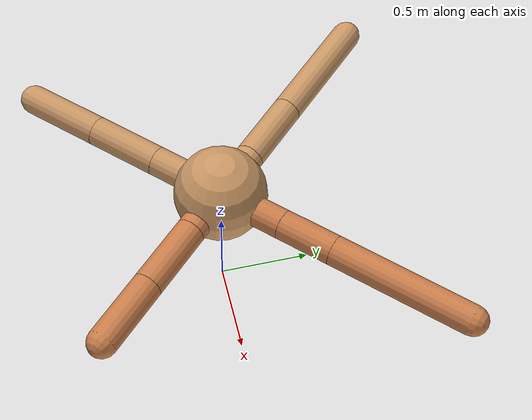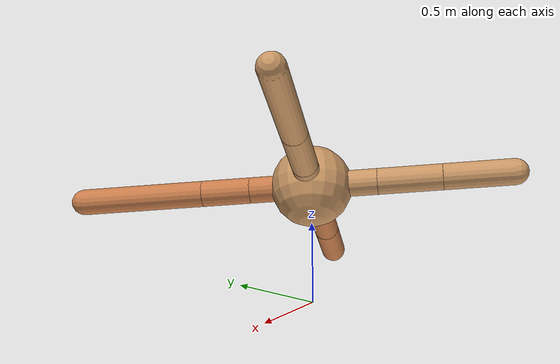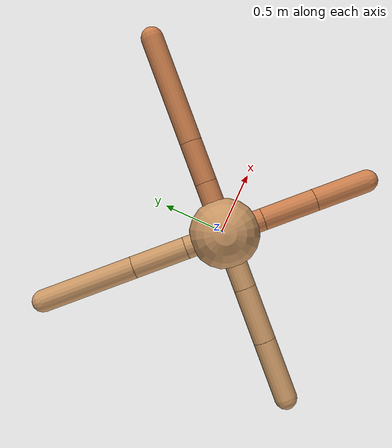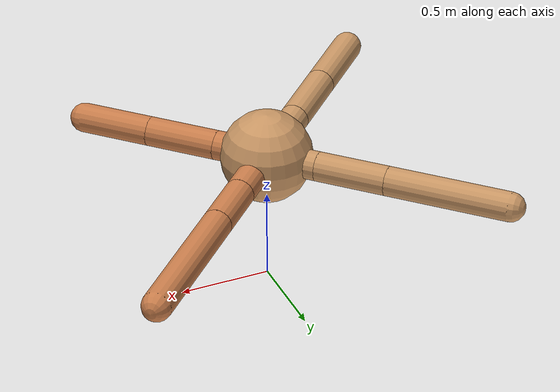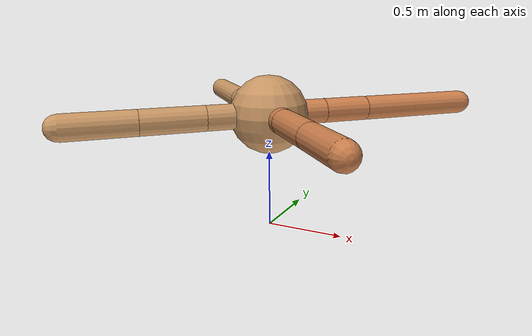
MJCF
<mujoco model="ant">
  <compiler angle="degree" coordinate="local" inertiafromgeom="true" />
  <option integrator="RK4" timestep="0.01" />
  <custom>
    <numeric data="0.0 0.0 0.55 1.0 0.0 0.0 0.0 0.0 1.0 0.0 -1.0 0.0 -1.0 0.0 1.0" name="init_qpos" />
  </custom>
  <default>
    <joint armature="1" damping="1" limited="true" />
    <geom conaffinity="0" condim="3" density="5.0" friction="1.5 0.1 0.1" margin="0.01" rgba="0.8 0.6 0.4 1" />
  </default>
  <worldbody>
    <body name="torso" pos="0 0 0.75">
      <geom name="torso_geom" pos="0 0 0" size="0.25" type="sphere" />

      <body name="front_left_leg" pos="0 0 0">
        <geom fromto="0.0 0.0 0.0 0.26896109725925843 0.26896109725925843 0.0" name="aux_1_geom" size="0.08" type="capsule" rgba=".8 .5 .3 1" />
        <body name="aux_1" pos="0.26896109725925843 0.26896109725925843 0.0">
          <joint axis="0 0 1" name="hip_1" pos="0.0 0.0 0.0" range="-40 40" type="hinge" />
          <geom fromto="0.0 0.0 0.0 0.21400878964824935 0.21400878964824935 0.0" name="left_leg_geom" size="0.08" type="capsule" rgba=".8 .5 .3 1" />
          <body pos="0.21400878964824935 0.21400878964824935 0.0" name="front_left_foot">
            <joint axis="-1 1 0" name="ankle_1" pos="0.0 0.0 0.0" range="30 100" type="hinge" />
            <geom fromto="0.0 0.0 0.0 0.5495190341853395 0.5495190341853395 0.0" name="left_ankle_geom" size="0.08" type="capsule" rgba=".8 .5 .3 1" />
          </body>
        </body>
      </body>
      <body name="front_right_leg" pos="0 0 0">
        <geom fromto="0.0 0.0 0.0 -0.20452022515597387 0.20452022515597387 0.0" name="aux_2_geom" size="0.08" type="capsule" />
        <body name="aux_2" pos="-0.20452022515597387 0.20452022515597387 0.0">
          <joint axis="0 0 1" name="hip_2" pos="0.0 0.0 0.0" range="-40 40" type="hinge" />
          <geom fromto="0.0 0.0 0.0 -0.27532707554281605 0.27532707554281605 0.0" name="right_leg_geom" size="0.08" type="capsule" />
          <body pos="-0.27532707554281605 0.27532707554281605 0.0" name="front_right_foot">
            <joint axis="1 1 0" name="ankle_2" pos="0.0 0.0 0.0" range="-100 -30" type="hinge" />
            <geom fromto="0.0 0.0 0.0 -0.4771273461024917 0.4771273461024917 0.0" name="right_ankle_geom" size="0.08" type="capsule" />
          </body>
        </body>
      </body>
      <body name="left_back_leg" pos="0 0 0">
        <geom fromto="0.0 0.0 0.0 -0.2868468233030416 -0.2868468233030416 0.0" name="aux_3_geom" size="0.08" type="capsule" />
        <body name="aux_3" pos="-0.2868468233030416 -0.2868468233030416 0.0">
          <joint axis="0 0 1" name="hip_3" pos="0.0 0.0 0.0" range="-40 40" type="hinge" />
          <geom fromto="0.0 0.0 0.0 -0.27863060849841487 -0.27863060849841487 0.0" name="back_leg_geom" size="0.08" type="capsule" />
          <body pos="-0.27863060849841487 -0.27863060849841487 0.0" name="left_back_foot">
            <joint axis="-1 1 0" name="ankle_3" pos="0.0 0.0 0.0" range="-100 -30" type="hinge" />
            <geom fromto="0.0 0.0 0.0 -0.30261148751780215 -0.30261148751780215 0.0" name="third_ankle_geom" size="0.08" type="capsule" />
          </body>
        </body>
      </body>
      <body name="right_back_leg" pos="0 0 0">
        <geom fromto="0.0 0.0 0.0 0.20285032242283585 -0.20285032242283585 0.0" name="aux_4_geom" size="0.08" type="capsule" rgba=".8 .5 .3 1" />
        <body name="aux_4" pos="0.20285032242283585 -0.20285032242283585 0.0">
          <joint axis="0 0 1" name="hip_4" pos="0.0 0.0 0.0" range="-40 40" type="hinge" />
          <geom fromto="0.0 0.0 0.0 0.27334576636016433 -0.27334576636016433 0.0" name="rightback_leg_geom" size="0.08" type="capsule" rgba=".8 .5 .3 1" />
          <body pos="0.27334576636016433 -0.27334576636016433 0.0" name="right_back_foot">
            <joint axis="1 1 0" name="ankle_4" pos="0.0 0.0 0.0" range="30 100" type="hinge" />
            <geom fromto="0.0 0.0 0.0 0.2722220206209604 -0.2722220206209604 0.0" name="fourth_ankle_geom" size="0.08" type="capsule" rgba=".8 .5 .3 1" />
          </body>
        </body>
      </body>
    </body>
  </worldbody>
  <actuator>
    <motor ctrllimited="true" ctrlrange="-1.0 1.0" joint="hip_4" gear="150" />
    <motor ctrllimited="true" ctrlrange="-1.0 1.0" joint="ankle_4" gear="150" />
    <motor ctrllimited="true" ctrlrange="-1.0 1.0" joint="hip_1" gear="150" />
    <motor ctrllimited="true" ctrlrange="-1.0 1.0" joint="ankle_1" gear="150" />
    <motor ctrllimited="true" ctrlrange="-1.0 1.0" joint="hip_2" gear="150" />
    <motor ctrllimited="true" ctrlrange="-1.0 1.0" joint="ankle_2" gear="150" />
    <motor ctrllimited="true" ctrlrange="-1.0 1.0" joint="hip_3" gear="150" />
    <motor ctrllimited="true" ctrlrange="-1.0 1.0" joint="ankle_3" gear="150" />
  </actuator>
</mujoco>
